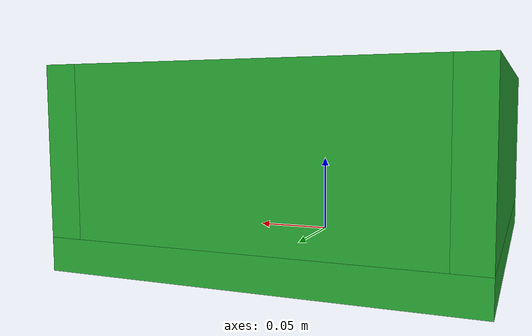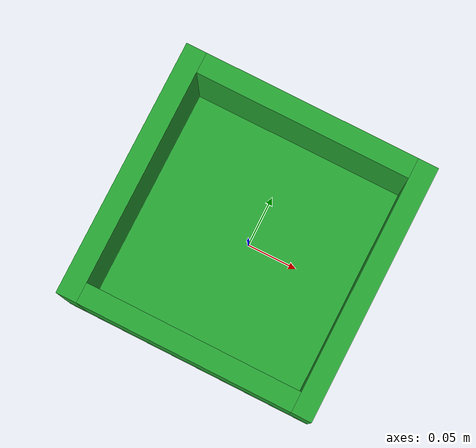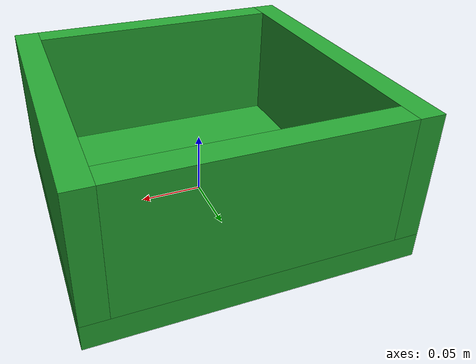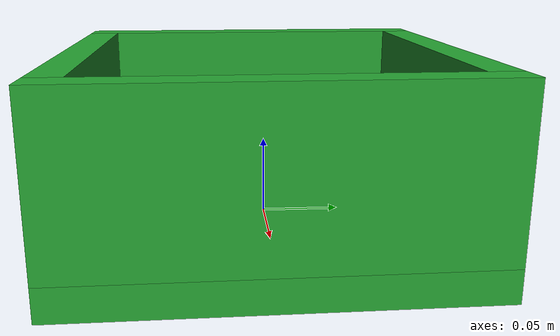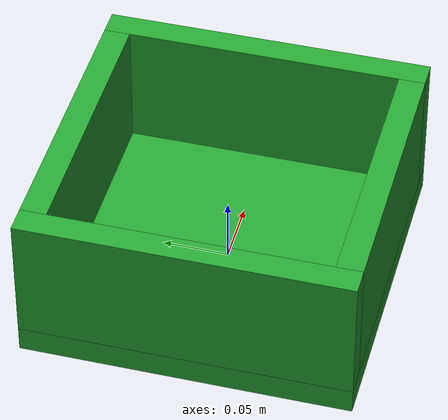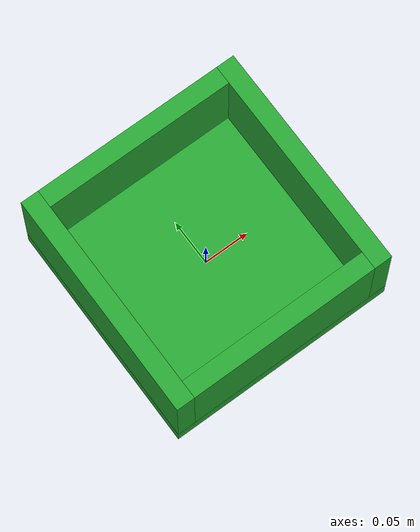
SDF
<?xml version='1.0'?>
<sdf version='1.7'>
  <model name='bin_green'>
    <link name='link_0'>
      <inertial>
        <mass>1</mass>
        <inertia>
          <ixx>0.166667</ixx>
          <ixy>0</ixy>
          <ixz>0</ixz>
          <iyy>0.166667</iyy>
          <iyz>0</iyz>
          <izz>0.166667</izz>
        </inertia>
        <pose>0 0 0 0 -0 0</pose>
      </inertial>
      <pose>0 0 0 0 -0 0</pose>
      <gravity>1</gravity>
      <self_collide>0</self_collide>
      <kinematic>0</kinematic>
      <enable_wind>0</enable_wind>
      <visual name='visual'>
        <pose>0 0 0 0 -0 0</pose>
        <geometry>
          <box>
            <size>0.25 0.25 0.02</size>
          </box>
        </geometry>
        <material>
          <lighting>1</lighting>
          <script>
            <uri>/home/amir/School/robotics/robotic_arm_final/src/robotic_arm/models/gazebo.material</uri>
            <name>Gazebo/Green</name>
          </script>
          <shader type='pixel'>
            <normal_map>__default__</normal_map>
          </shader>
        </material>
        <transparency>0</transparency>
        <cast_shadows>1</cast_shadows>
      </visual>
      <collision name='collision'>
        <laser_retro>0</laser_retro>
        <max_contacts>10</max_contacts>
        <pose>0 0 0 0 -0 0</pose>
        <geometry>
          <box>
            <size>0.25 0.25 0.02</size>
          </box>
        </geometry>
        <surface>
          <friction>
            <ode>
              <mu>1</mu>
              <mu2>1</mu2>
              <fdir1>0 0 0</fdir1>
              <slip1>0</slip1>
              <slip2>0</slip2>
            </ode>
            <torsional>
              <coefficient>1</coefficient>
              <patch_radius>0</patch_radius>
              <surface_radius>0</surface_radius>
              <use_patch_radius>1</use_patch_radius>
              <ode>
                <slip>0</slip>
              </ode>
            </torsional>
          </friction>
          <bounce>
            <restitution_coefficient>0</restitution_coefficient>
            <threshold>1e+06</threshold>
          </bounce>
          <contact>
            <collide_without_contact>0</collide_without_contact>
            <collide_without_contact_bitmask>1</collide_without_contact_bitmask>
            <collide_bitmask>1</collide_bitmask>
            <ode>
              <soft_cfm>0</soft_cfm>
              <soft_erp>0.2</soft_erp>
              <kp>1e+13</kp>
              <kd>1</kd>
              <max_vel>0.01</max_vel>
              <min_depth>0</min_depth>
            </ode>
            <bullet>
              <split_impulse>1</split_impulse>
              <split_impulse_penetration_threshold>-0.01</split_impulse_penetration_threshold>
              <soft_cfm>0</soft_cfm>
              <soft_erp>0.2</soft_erp>
              <kp>1e+13</kp>
              <kd>1</kd>
            </bullet>
          </contact>
        </surface>
      </collision>
    </link>
    <link name='link_1'>
      <inertial>
        <mass>1</mass>
        <inertia>
          <ixx>0.166667</ixx>
          <ixy>0</ixy>
          <ixz>0</ixz>
          <iyy>0.166667</iyy>
          <iyz>0</iyz>
          <izz>0.166667</izz>
        </inertia>
        <pose>0 0 0 0 -0 0</pose>
      </inertial>
      <pose>-0.115 0 0.06 0 -0 0</pose>
      <gravity>1</gravity>
      <self_collide>0</self_collide>
      <kinematic>0</kinematic>
      <enable_wind>0</enable_wind>
      <visual name='visual'>
        <pose>0 0 0 0 -0 0</pose>
        <geometry>
          <box>
            <size>0.02 0.25 0.1</size>
          </box>
        </geometry>
        <material>
          <lighting>1</lighting>
          <script>
            <uri>/home/amir/School/robotics/robotic_arm_final/src/robotic_arm/models/gazebo.material</uri>
            <name>Gazebo/Green</name>
          </script>
          <shader type='pixel'>
            <normal_map>__default__</normal_map>
          </shader>
        </material>
        <transparency>0</transparency>
        <cast_shadows>1</cast_shadows>
      </visual>
      <collision name='collision'>
        <laser_retro>0</laser_retro>
        <max_contacts>10</max_contacts>
        <pose>0 0 0 0 -0 0</pose>
        <geometry>
          <box>
            <size>0.02 0.25 0.1</size>
          </box>
        </geometry>
        <surface>
          <friction>
            <ode>
              <mu>1</mu>
              <mu2>1</mu2>
              <fdir1>0 0 0</fdir1>
              <slip1>0</slip1>
              <slip2>0</slip2>
            </ode>
            <torsional>
              <coefficient>1</coefficient>
              <patch_radius>0</patch_radius>
              <surface_radius>0</surface_radius>
              <use_patch_radius>1</use_patch_radius>
              <ode>
                <slip>0</slip>
              </ode>
            </torsional>
          </friction>
          <bounce>
            <restitution_coefficient>0</restitution_coefficient>
            <threshold>1e+06</threshold>
          </bounce>
          <contact>
            <collide_without_contact>0</collide_without_contact>
            <collide_without_contact_bitmask>1</collide_without_contact_bitmask>
            <collide_bitmask>1</collide_bitmask>
            <ode>
              <soft_cfm>0</soft_cfm>
              <soft_erp>0.2</soft_erp>
              <kp>1e+13</kp>
              <kd>1</kd>
              <max_vel>0.01</max_vel>
              <min_depth>0</min_depth>
            </ode>
            <bullet>
              <split_impulse>1</split_impulse>
              <split_impulse_penetration_threshold>-0.01</split_impulse_penetration_threshold>
              <soft_cfm>0</soft_cfm>
              <soft_erp>0.2</soft_erp>
              <kp>1e+13</kp>
              <kd>1</kd>
            </bullet>
          </contact>
        </surface>
      </collision>
    </link>
    <link name='link_1_clone'>
      <inertial>
        <mass>1</mass>
        <inertia>
          <ixx>0.166667</ixx>
          <ixy>0</ixy>
          <ixz>0</ixz>
          <iyy>0.166667</iyy>
          <iyz>0</iyz>
          <izz>0.166667</izz>
        </inertia>
        <pose>0 0 0 0 -0 0</pose>
      </inertial>
      <pose>0.115 0 0.06 0 -0 0</pose>
      <gravity>1</gravity>
      <self_collide>0</self_collide>
      <kinematic>0</kinematic>
      <enable_wind>0</enable_wind>
      <visual name='visual'>
        <pose>0 0 0 0 -0 0</pose>
        <geometry>
          <box>
            <size>0.02 0.25 0.1</size>
          </box>
        </geometry>
        <material>
          <lighting>1</lighting>
          <script>
            <uri>/home/amir/School/robotics/robotic_arm_final/src/robotic_arm/models/gazebo.material</uri>
            <name>Gazebo/Green</name>
          </script>
          <shader type='pixel'>
            <normal_map>__default__</normal_map>
          </shader>
        </material>
        <transparency>0</transparency>
        <cast_shadows>1</cast_shadows>
      </visual>
      <collision name='collision'>
        <laser_retro>0</laser_retro>
        <max_contacts>10</max_contacts>
        <pose>0 0 0 0 -0 0</pose>
        <geometry>
          <box>
            <size>0.02 0.25 0.1</size>
          </box>
        </geometry>
        <surface>
          <friction>
            <ode>
              <mu>1</mu>
              <mu2>1</mu2>
              <fdir1>0 0 0</fdir1>
              <slip1>0</slip1>
              <slip2>0</slip2>
            </ode>
            <torsional>
              <coefficient>1</coefficient>
              <patch_radius>0</patch_radius>
              <surface_radius>0</surface_radius>
              <use_patch_radius>1</use_patch_radius>
              <ode>
                <slip>0</slip>
              </ode>
            </torsional>
          </friction>
          <bounce>
            <restitution_coefficient>0</restitution_coefficient>
            <threshold>1e+06</threshold>
          </bounce>
          <contact>
            <collide_without_contact>0</collide_without_contact>
            <collide_without_contact_bitmask>1</collide_without_contact_bitmask>
            <collide_bitmask>1</collide_bitmask>
            <ode>
              <soft_cfm>0</soft_cfm>
              <soft_erp>0.2</soft_erp>
              <kp>1e+13</kp>
              <kd>1</kd>
              <max_vel>0.01</max_vel>
              <min_depth>0</min_depth>
            </ode>
            <bullet>
              <split_impulse>1</split_impulse>
              <split_impulse_penetration_threshold>-0.01</split_impulse_penetration_threshold>
              <soft_cfm>0</soft_cfm>
              <soft_erp>0.2</soft_erp>
              <kp>1e+13</kp>
              <kd>1</kd>
            </bullet>
          </contact>
        </surface>
      </collision>
    </link>
    <link name='link_2'>
      <inertial>
        <mass>1</mass>
        <inertia>
          <ixx>0.166667</ixx>
          <ixy>0</ixy>
          <ixz>0</ixz>
          <iyy>0.166667</iyy>
          <iyz>0</iyz>
          <izz>0.166667</izz>
        </inertia>
        <pose>0 0 0 0 -0 0</pose>
      </inertial>
      <pose>0 -0.115 0.06 0 -0 0</pose>
      <gravity>1</gravity>
      <self_collide>0</self_collide>
      <kinematic>0</kinematic>
      <enable_wind>0</enable_wind>
      <visual name='visual'>
        <pose>0 0 0 0 -0 0</pose>
        <geometry>
          <box>
            <size>0.21 0.02 0.1</size>
          </box>
        </geometry>
        <material>
          <lighting>1</lighting>
          <script>
            <uri>/home/amir/School/robotics/robotic_arm_final/src/robotic_arm/models/gazebo.material</uri>
            <name>Gazebo/Green</name>
          </script>
          <shader type='pixel'>
            <normal_map>__default__</normal_map>
          </shader>
        </material>
        <transparency>0</transparency>
        <cast_shadows>1</cast_shadows>
      </visual>
      <collision name='collision'>
        <laser_retro>0</laser_retro>
        <max_contacts>10</max_contacts>
        <pose>0 0 0 0 -0 0</pose>
        <geometry>
          <box>
            <size>0.21 0.02 0.1</size>
          </box>
        </geometry>
        <surface>
          <friction>
            <ode>
              <mu>1</mu>
              <mu2>1</mu2>
              <fdir1>0 0 0</fdir1>
              <slip1>0</slip1>
              <slip2>0</slip2>
            </ode>
            <torsional>
              <coefficient>1</coefficient>
              <patch_radius>0</patch_radius>
              <surface_radius>0</surface_radius>
              <use_patch_radius>1</use_patch_radius>
              <ode>
                <slip>0</slip>
              </ode>
            </torsional>
          </friction>
          <bounce>
            <restitution_coefficient>0</restitution_coefficient>
            <threshold>1e+06</threshold>
          </bounce>
          <contact>
            <collide_without_contact>0</collide_without_contact>
            <collide_without_contact_bitmask>1</collide_without_contact_bitmask>
            <collide_bitmask>1</collide_bitmask>
            <ode>
              <soft_cfm>0</soft_cfm>
              <soft_erp>0.2</soft_erp>
              <kp>1e+13</kp>
              <kd>1</kd>
              <max_vel>0.01</max_vel>
              <min_depth>0</min_depth>
            </ode>
            <bullet>
              <split_impulse>1</split_impulse>
              <split_impulse_penetration_threshold>-0.01</split_impulse_penetration_threshold>
              <soft_cfm>0</soft_cfm>
              <soft_erp>0.2</soft_erp>
              <kp>1e+13</kp>
              <kd>1</kd>
            </bullet>
          </contact>
        </surface>
      </collision>
    </link>
    <link name='link_2_clone'>
      <inertial>
        <mass>1</mass>
        <inertia>
          <ixx>0.166667</ixx>
          <ixy>0</ixy>
          <ixz>0</ixz>
          <iyy>0.166667</iyy>
          <iyz>0</iyz>
          <izz>0.166667</izz>
        </inertia>
        <pose>0 0 0 0 -0 0</pose>
      </inertial>
      <pose>0 0.115 0.06 0 -0 0</pose>
      <gravity>1</gravity>
      <self_collide>0</self_collide>
      <kinematic>0</kinematic>
      <enable_wind>0</enable_wind>
      <visual name='visual'>
        <pose>0 0 0 0 -0 0</pose>
        <geometry>
          <box>
            <size>0.21 0.02 0.1</size>
          </box>
        </geometry>
        <material>
          <lighting>1</lighting>
          <script>
            <uri>/home/amir/School/robotics/robotic_arm_final/src/robotic_arm/models/gazebo.material</uri>
            <name>Gazebo/Green</name>
          </script>
          <shader type='pixel'>
            <normal_map>__default__</normal_map>
          </shader>
        </material>
        <transparency>0</transparency>
        <cast_shadows>1</cast_shadows>
      </visual>
      <collision name='collision'>
        <laser_retro>0</laser_retro>
        <max_contacts>10</max_contacts>
        <pose>0 0 0 0 -0 0</pose>
        <geometry>
          <box>
            <size>0.21 0.02 0.1</size>
          </box>
        </geometry>
        <surface>
          <friction>
            <ode>
              <mu>1</mu>
              <mu2>1</mu2>
              <fdir1>0 0 0</fdir1>
              <slip1>0</slip1>
              <slip2>0</slip2>
            </ode>
            <torsional>
              <coefficient>1</coefficient>
              <patch_radius>0</patch_radius>
              <surface_radius>0</surface_radius>
              <use_patch_radius>1</use_patch_radius>
              <ode>
                <slip>0</slip>
              </ode>
            </torsional>
          </friction>
          <bounce>
            <restitution_coefficient>0</restitution_coefficient>
            <threshold>1e+06</threshold>
          </bounce>
          <contact>
            <collide_without_contact>0</collide_without_contact>
            <collide_without_contact_bitmask>1</collide_without_contact_bitmask>
            <collide_bitmask>1</collide_bitmask>
            <ode>
              <soft_cfm>0</soft_cfm>
              <soft_erp>0.2</soft_erp>
              <kp>1e+13</kp>
              <kd>1</kd>
              <max_vel>0.01</max_vel>
              <min_depth>0</min_depth>
            </ode>
            <bullet>
              <split_impulse>1</split_impulse>
              <split_impulse_penetration_threshold>-0.01</split_impulse_penetration_threshold>
              <soft_cfm>0</soft_cfm>
              <soft_erp>0.2</soft_erp>
              <kp>1e+13</kp>
              <kd>1</kd>
            </bullet>
          </contact>
        </surface>
      </collision>
    </link>
    <static>0</static>
    <allow_auto_disable>1</allow_auto_disable>
  </model>
</sdf>
